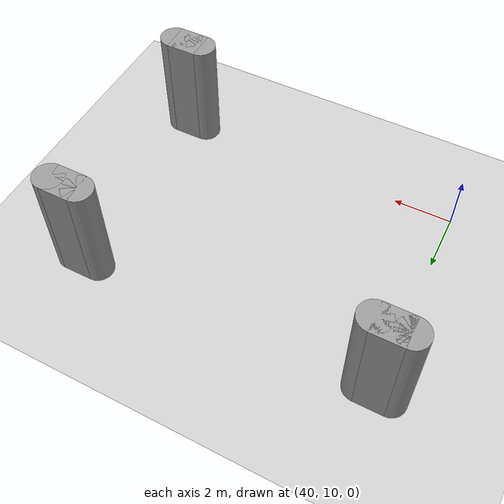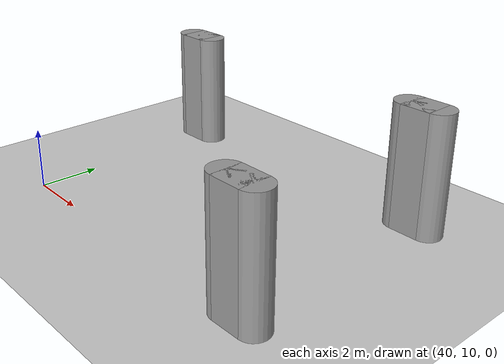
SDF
<sdf version="1.6">
 <world name="default">
  <model name="ground_plane">
   <static>1</static>
   <link name="link">
    <collision name="collision">
     <geometry><plane><normal>0 0 1</normal><size>100 100</size></plane></geometry>
     <surface><friction><ode><mu>100</mu><mu2>50</mu2></ode></friction></surface>
    </collision>
    <visual name="visual">
     <cast_shadows>0</cast_shadows>
     <geometry><plane><normal>0 0 1</normal><size>100 100</size></plane></geometry>
     <material>
      <script><uri>file://media/materials/scripts/gazebo.material</uri><name>Gazebo/Grey</name></script>
     </material>
    </visual>
   </link>
  </model>
  <model name="pillar_clone_6_clone_21">
   <link name="link_0">
    <inertial>
     <mass>1</mass>
     <inertia>
      <ixx>0.166667</ixx>
      <ixy>0</ixy>
      <ixz>0</ixz>
      <iyy>0.166667</iyy>
      <iyz>0</iyz>
      <izz>0.166667</izz>
     </inertia>
    </inertial>
    <kinematic>1</kinematic>
    <visual name="visual">
     <geometry><box><size>1 1 4</size></box></geometry>
     <material>
      <lighting>1</lighting>
      <script><uri>file://media/materials/scripts/gazebo.material</uri><name>Gazebo/Grey</name></script>
      <shader type="pixel"><normal_map>__default__</normal_map></shader>
      <ambient>0.3 0.3 0.3 1</ambient>
      <diffuse>0.7 0.7 0.7 1</diffuse>
      <specular>0.01 0.01 0.01 1</specular>
      <emissive>0 0 0 1</emissive>
     </material>
    </visual>
    <collision name="collision">
     <geometry><box><size>1 1 4</size></box></geometry>
     <surface>
      <friction>
       <ode><mu>1</mu><mu2>1</mu2><fdir1>0 0 0</fdir1><slip1>0</slip1><slip2>0</slip2></ode>
       <torsional>
        <coefficient>1</coefficient>
        <patch_radius>0</patch_radius>
        <surface_radius>0</surface_radius>
        <use_patch_radius>1</use_patch_radius>
        <ode><slip>0</slip></ode>
       </torsional>
      </friction>
      <bounce><restitution_coefficient>0</restitution_coefficient><threshold>1e+06</threshold></bounce>
      <contact>
       <collide_without_contact>0</collide_without_contact>
       <collide_without_contact_bitmask>1</collide_without_contact_bitmask>
       <collide_bitmask>1</collide_bitmask>
       <ode>
        <soft_cfm>0</soft_cfm>
        <soft_erp>0.2</soft_erp>
        <kp>1e+13</kp>
        <kd>1</kd>
        <max_vel>0.01</max_vel>
        <min_depth>0</min_depth>
       </ode>
       <bullet>
        <split_impulse>1</split_impulse>
        <split_impulse_penetration_threshold>-0.01</split_impulse_penetration_threshold>
        <soft_cfm>0</soft_cfm>
        <soft_erp>0.2</soft_erp>
        <kp>1e+13</kp>
        <kd>1</kd>
       </bullet>
      </contact>
     </surface>
    </collision>
   </link>
   <link name="link_1">
    <inertial>
     <mass>1</mass>
     <inertia><ixx>0.145833</ixx><ixy>0</ixy><ixz>0</ixz><iyy>0.145833</iyy><iyz>0</iyz><izz>0.125</izz></inertia>
    </inertial>
    <pose>-0.5 0 0 0 -0 0</pose>
    <kinematic>1</kinematic>
    <visual name="visual">
     <geometry><cylinder><radius>0.5</radius><length>4</length></cylinder></geometry>
     <material>
      <lighting>1</lighting>
      <script><uri>file://media/materials/scripts/gazebo.material</uri><name>Gazebo/Grey</name></script>
      <shader type="pixel"><normal_map>__default__</normal_map></shader>
      <ambient>0.3 0.3 0.3 1</ambient>
      <diffuse>0.7 0.7 0.7 1</diffuse>
      <specular>0.01 0.01 0.01 1</specular>
      <emissive>0 0 0 1</emissive>
     </material>
    </visual>
    <collision name="collision">
     <geometry><cylinder><radius>0.5</radius><length>4</length></cylinder></geometry>
     <surface>
      <friction>
       <ode><mu>1</mu><mu2>1</mu2><fdir1>0 0 0</fdir1><slip1>0</slip1><slip2>0</slip2></ode>
       <torsional>
        <coefficient>1</coefficient>
        <patch_radius>0</patch_radius>
        <surface_radius>0</surface_radius>
        <use_patch_radius>1</use_patch_radius>
        <ode><slip>0</slip></ode>
       </torsional>
      </friction>
      <bounce><restitution_coefficient>0</restitution_coefficient><threshold>1e+06</threshold></bounce>
      <contact>
       <collide_without_contact>0</collide_without_contact>
       <collide_without_contact_bitmask>1</collide_without_contact_bitmask>
       <collide_bitmask>1</collide_bitmask>
       <ode>
        <soft_cfm>0</soft_cfm>
        <soft_erp>0.2</soft_erp>
        <kp>1e+13</kp>
        <kd>1</kd>
        <max_vel>0.01</max_vel>
        <min_depth>0</min_depth>
       </ode>
       <bullet>
        <split_impulse>1</split_impulse>
        <split_impulse_penetration_threshold>-0.01</split_impulse_penetration_threshold>
        <soft_cfm>0</soft_cfm>
        <soft_erp>0.2</soft_erp>
        <kp>1e+13</kp>
        <kd>1</kd>
       </bullet>
      </contact>
     </surface>
    </collision>
   </link>
   <link name="link_2">
    <inertial>
     <mass>1</mass>
     <inertia><ixx>0.145833</ixx><ixy>0</ixy><ixz>0</ixz><iyy>0.145833</iyy><iyz>0</iyz><izz>0.125</izz></inertia>
    </inertial>
    <pose>0.5 0 0 0 -0 0</pose>
    <kinematic>1</kinematic>
    <visual name="visual">
     <geometry><cylinder><radius>0.5</radius><length>4</length></cylinder></geometry>
     <material>
      <lighting>1</lighting>
      <script><uri>file://media/materials/scripts/gazebo.material</uri><name>Gazebo/Grey</name></script>
      <shader type="pixel"><normal_map>__default__</normal_map></shader>
      <ambient>0.3 0.3 0.3 1</ambient>
      <diffuse>0.7 0.7 0.7 1</diffuse>
      <specular>0.01 0.01 0.01 1</specular>
      <emissive>0 0 0 1</emissive>
     </material>
    </visual>
    <collision name="collision">
     <geometry><cylinder><radius>0.5</radius><length>4</length></cylinder></geometry>
     <surface>
      <friction>
       <ode><mu>1</mu><mu2>1</mu2><fdir1>0 0 0</fdir1><slip1>0</slip1><slip2>0</slip2></ode>
       <torsional>
        <coefficient>1</coefficient>
        <patch_radius>0</patch_radius>
        <surface_radius>0</surface_radius>
        <use_patch_radius>1</use_patch_radius>
        <ode><slip>0</slip></ode>
       </torsional>
      </friction>
      <bounce><restitution_coefficient>0</restitution_coefficient><threshold>1e+06</threshold></bounce>
      <contact>
       <collide_without_contact>0</collide_without_contact>
       <collide_without_contact_bitmask>1</collide_without_contact_bitmask>
       <collide_bitmask>1</collide_bitmask>
       <ode>
        <soft_cfm>0</soft_cfm>
        <soft_erp>0.2</soft_erp>
        <kp>1e+13</kp>
        <kd>1</kd>
        <max_vel>0.01</max_vel>
        <min_depth>0</min_depth>
       </ode>
       <bullet>
        <split_impulse>1</split_impulse>
        <split_impulse_penetration_threshold>-0.01</split_impulse_penetration_threshold>
        <soft_cfm>0</soft_cfm>
        <soft_erp>0.2</soft_erp>
        <kp>1e+13</kp>
        <kd>1</kd>
       </bullet>
      </contact>
     </surface>
    </collision>
   </link>
   <static>1</static>
   <pose>50 10 2 0 -0 0</pose>
  </model>
  <model name="pillar_clone_6_clone_26">
   <link name="link_0">
    <inertial>
     <mass>1</mass>
     <inertia>
      <ixx>0.166667</ixx>
      <ixy>0</ixy>
      <ixz>0</ixz>
      <iyy>0.166667</iyy>
      <iyz>0</iyz>
      <izz>0.166667</izz>
     </inertia>
    </inertial>
    <kinematic>1</kinematic>
    <visual name="visual">
     <geometry><box><size>1 1 4</size></box></geometry>
     <material>
      <lighting>1</lighting>
      <script><uri>file://media/materials/scripts/gazebo.material</uri><name>Gazebo/Grey</name></script>
      <shader type="pixel"><normal_map>__default__</normal_map></shader>
      <ambient>0.3 0.3 0.3 1</ambient>
      <diffuse>0.7 0.7 0.7 1</diffuse>
      <specular>0.01 0.01 0.01 1</specular>
      <emissive>0 0 0 1</emissive>
     </material>
    </visual>
    <collision name="collision">
     <geometry><box><size>1 1 4</size></box></geometry>
     <surface>
      <friction>
       <ode><mu>1</mu><mu2>1</mu2><fdir1>0 0 0</fdir1><slip1>0</slip1><slip2>0</slip2></ode>
       <torsional>
        <coefficient>1</coefficient>
        <patch_radius>0</patch_radius>
        <surface_radius>0</surface_radius>
        <use_patch_radius>1</use_patch_radius>
        <ode><slip>0</slip></ode>
       </torsional>
      </friction>
      <bounce><restitution_coefficient>0</restitution_coefficient><threshold>1e+06</threshold></bounce>
      <contact>
       <collide_without_contact>0</collide_without_contact>
       <collide_without_contact_bitmask>1</collide_without_contact_bitmask>
       <collide_bitmask>1</collide_bitmask>
       <ode>
        <soft_cfm>0</soft_cfm>
        <soft_erp>0.2</soft_erp>
        <kp>1e+13</kp>
        <kd>1</kd>
        <max_vel>0.01</max_vel>
        <min_depth>0</min_depth>
       </ode>
       <bullet>
        <split_impulse>1</split_impulse>
        <split_impulse_penetration_threshold>-0.01</split_impulse_penetration_threshold>
        <soft_cfm>0</soft_cfm>
        <soft_erp>0.2</soft_erp>
        <kp>1e+13</kp>
        <kd>1</kd>
       </bullet>
      </contact>
     </surface>
    </collision>
   </link>
   <link name="link_1">
    <inertial>
     <mass>1</mass>
     <inertia><ixx>0.145833</ixx><ixy>0</ixy><ixz>0</ixz><iyy>0.145833</iyy><iyz>0</iyz><izz>0.125</izz></inertia>
    </inertial>
    <pose>-0.5 0 0 0 -0 0</pose>
    <kinematic>1</kinematic>
    <visual name="visual">
     <geometry><cylinder><radius>0.5</radius><length>4</length></cylinder></geometry>
     <material>
      <lighting>1</lighting>
      <script><uri>file://media/materials/scripts/gazebo.material</uri><name>Gazebo/Grey</name></script>
      <shader type="pixel"><normal_map>__default__</normal_map></shader>
      <ambient>0.3 0.3 0.3 1</ambient>
      <diffuse>0.7 0.7 0.7 1</diffuse>
      <specular>0.01 0.01 0.01 1</specular>
      <emissive>0 0 0 1</emissive>
     </material>
    </visual>
    <collision name="collision">
     <geometry><cylinder><radius>0.5</radius><length>4</length></cylinder></geometry>
     <surface>
      <friction>
       <ode><mu>1</mu><mu2>1</mu2><fdir1>0 0 0</fdir1><slip1>0</slip1><slip2>0</slip2></ode>
       <torsional>
        <coefficient>1</coefficient>
        <patch_radius>0</patch_radius>
        <surface_radius>0</surface_radius>
        <use_patch_radius>1</use_patch_radius>
        <ode><slip>0</slip></ode>
       </torsional>
      </friction>
      <bounce><restitution_coefficient>0</restitution_coefficient><threshold>1e+06</threshold></bounce>
      <contact>
       <collide_without_contact>0</collide_without_contact>
       <collide_without_contact_bitmask>1</collide_without_contact_bitmask>
       <collide_bitmask>1</collide_bitmask>
       <ode>
        <soft_cfm>0</soft_cfm>
        <soft_erp>0.2</soft_erp>
        <kp>1e+13</kp>
        <kd>1</kd>
        <max_vel>0.01</max_vel>
        <min_depth>0</min_depth>
       </ode>
       <bullet>
        <split_impulse>1</split_impulse>
        <split_impulse_penetration_threshold>-0.01</split_impulse_penetration_threshold>
        <soft_cfm>0</soft_cfm>
        <soft_erp>0.2</soft_erp>
        <kp>1e+13</kp>
        <kd>1</kd>
       </bullet>
      </contact>
     </surface>
    </collision>
   </link>
   <link name="link_2">
    <inertial>
     <mass>1</mass>
     <inertia><ixx>0.145833</ixx><ixy>0</ixy><ixz>0</ixz><iyy>0.145833</iyy><iyz>0</iyz><izz>0.125</izz></inertia>
    </inertial>
    <pose>0.5 0 0 0 -0 0</pose>
    <kinematic>1</kinematic>
    <visual name="visual">
     <geometry><cylinder><radius>0.5</radius><length>4</length></cylinder></geometry>
     <material>
      <lighting>1</lighting>
      <script><uri>file://media/materials/scripts/gazebo.material</uri><name>Gazebo/Grey</name></script>
      <shader type="pixel"><normal_map>__default__</normal_map></shader>
      <ambient>0.3 0.3 0.3 1</ambient>
      <diffuse>0.7 0.7 0.7 1</diffuse>
      <specular>0.01 0.01 0.01 1</specular>
      <emissive>0 0 0 1</emissive>
     </material>
    </visual>
    <collision name="collision">
     <geometry><cylinder><radius>0.5</radius><length>4</length></cylinder></geometry>
     <surface>
      <friction>
       <ode><mu>1</mu><mu2>1</mu2><fdir1>0 0 0</fdir1><slip1>0</slip1><slip2>0</slip2></ode>
       <torsional>
        <coefficient>1</coefficient>
        <patch_radius>0</patch_radius>
        <surface_radius>0</surface_radius>
        <use_patch_radius>1</use_patch_radius>
        <ode><slip>0</slip></ode>
       </torsional>
      </friction>
      <bounce><restitution_coefficient>0</restitution_coefficient><threshold>1e+06</threshold></bounce>
      <contact>
       <collide_without_contact>0</collide_without_contact>
       <collide_without_contact_bitmask>1</collide_without_contact_bitmask>
       <collide_bitmask>1</collide_bitmask>
       <ode>
        <soft_cfm>0</soft_cfm>
        <soft_erp>0.2</soft_erp>
        <kp>1e+13</kp>
        <kd>1</kd>
        <max_vel>0.01</max_vel>
        <min_depth>0</min_depth>
       </ode>
       <bullet>
        <split_impulse>1</split_impulse>
        <split_impulse_penetration_threshold>-0.01</split_impulse_penetration_threshold>
        <soft_cfm>0</soft_cfm>
        <soft_erp>0.2</soft_erp>
        <kp>1e+13</kp>
        <kd>1</kd>
       </bullet>
      </contact>
     </surface>
    </collision>
   </link>
   <static>1</static>
   <pose>40 17 2 0 -0 0</pose>
  </model>
  <model name="pillar_clone_6_clone_27">
   <link name="link_0">
    <inertial>
     <mass>1</mass>
     <inertia>
      <ixx>0.166667</ixx>
      <ixy>0</ixy>
      <ixz>0</ixz>
      <iyy>0.166667</iyy>
      <iyz>0</iyz>
      <izz>0.166667</izz>
     </inertia>
    </inertial>
    <kinematic>1</kinematic>
    <visual name="visual">
     <geometry><box><size>1 1 4</size></box></geometry>
     <material>
      <lighting>1</lighting>
      <script><uri>file://media/materials/scripts/gazebo.material</uri><name>Gazebo/Grey</name></script>
      <shader type="pixel"><normal_map>__default__</normal_map></shader>
      <ambient>0.3 0.3 0.3 1</ambient>
      <diffuse>0.7 0.7 0.7 1</diffuse>
      <specular>0.01 0.01 0.01 1</specular>
      <emissive>0 0 0 1</emissive>
     </material>
    </visual>
    <collision name="collision">
     <geometry><box><size>1 1 4</size></box></geometry>
     <surface>
      <friction>
       <ode><mu>1</mu><mu2>1</mu2><fdir1>0 0 0</fdir1><slip1>0</slip1><slip2>0</slip2></ode>
       <torsional>
        <coefficient>1</coefficient>
        <patch_radius>0</patch_radius>
        <surface_radius>0</surface_radius>
        <use_patch_radius>1</use_patch_radius>
        <ode><slip>0</slip></ode>
       </torsional>
      </friction>
      <bounce><restitution_coefficient>0</restitution_coefficient><threshold>1e+06</threshold></bounce>
      <contact>
       <collide_without_contact>0</collide_without_contact>
       <collide_without_contact_bitmask>1</collide_without_contact_bitmask>
       <collide_bitmask>1</collide_bitmask>
       <ode>
        <soft_cfm>0</soft_cfm>
        <soft_erp>0.2</soft_erp>
        <kp>1e+13</kp>
        <kd>1</kd>
        <max_vel>0.01</max_vel>
        <min_depth>0</min_depth>
       </ode>
       <bullet>
        <split_impulse>1</split_impulse>
        <split_impulse_penetration_threshold>-0.01</split_impulse_penetration_threshold>
        <soft_cfm>0</soft_cfm>
        <soft_erp>0.2</soft_erp>
        <kp>1e+13</kp>
        <kd>1</kd>
       </bullet>
      </contact>
     </surface>
    </collision>
   </link>
   <link name="link_1">
    <inertial>
     <mass>1</mass>
     <inertia><ixx>0.145833</ixx><ixy>0</ixy><ixz>0</ixz><iyy>0.145833</iyy><iyz>0</iyz><izz>0.125</izz></inertia>
    </inertial>
    <pose>-0.5 0 0 0 -0 0</pose>
    <kinematic>1</kinematic>
    <visual name="visual">
     <geometry><cylinder><radius>0.5</radius><length>4</length></cylinder></geometry>
     <material>
      <lighting>1</lighting>
      <script><uri>file://media/materials/scripts/gazebo.material</uri><name>Gazebo/Grey</name></script>
      <shader type="pixel"><normal_map>__default__</normal_map></shader>
      <ambient>0.3 0.3 0.3 1</ambient>
      <diffuse>0.7 0.7 0.7 1</diffuse>
      <specular>0.01 0.01 0.01 1</specular>
      <emissive>0 0 0 1</emissive>
     </material>
    </visual>
    <collision name="collision">
     <geometry><cylinder><radius>0.5</radius><length>4</length></cylinder></geometry>
     <surface>
      <friction>
       <ode><mu>1</mu><mu2>1</mu2><fdir1>0 0 0</fdir1><slip1>0</slip1><slip2>0</slip2></ode>
       <torsional>
        <coefficient>1</coefficient>
        <patch_radius>0</patch_radius>
        <surface_radius>0</surface_radius>
        <use_patch_radius>1</use_patch_radius>
        <ode><slip>0</slip></ode>
       </torsional>
      </friction>
      <bounce><restitution_coefficient>0</restitution_coefficient><threshold>1e+06</threshold></bounce>
      <contact>
       <collide_without_contact>0</collide_without_contact>
       <collide_without_contact_bitmask>1</collide_without_contact_bitmask>
       <collide_bitmask>1</collide_bitmask>
       <ode>
        <soft_cfm>0</soft_cfm>
        <soft_erp>0.2</soft_erp>
        <kp>1e+13</kp>
        <kd>1</kd>
        <max_vel>0.01</max_vel>
        <min_depth>0</min_depth>
       </ode>
       <bullet>
        <split_impulse>1</split_impulse>
        <split_impulse_penetration_threshold>-0.01</split_impulse_penetration_threshold>
        <soft_cfm>0</soft_cfm>
        <soft_erp>0.2</soft_erp>
        <kp>1e+13</kp>
        <kd>1</kd>
       </bullet>
      </contact>
     </surface>
    </collision>
   </link>
   <link name="link_2">
    <inertial>
     <mass>1</mass>
     <inertia><ixx>0.145833</ixx><ixy>0</ixy><ixz>0</ixz><iyy>0.145833</iyy><iyz>0</iyz><izz>0.125</izz></inertia>
    </inertial>
    <pose>0.5 0 0 0 -0 0</pose>
    <kinematic>1</kinematic>
    <visual name="visual">
     <geometry><cylinder><radius>0.5</radius><length>4</length></cylinder></geometry>
     <material>
      <lighting>1</lighting>
      <script><uri>file://media/materials/scripts/gazebo.material</uri><name>Gazebo/Grey</name></script>
      <shader type="pixel"><normal_map>__default__</normal_map></shader>
      <ambient>0.3 0.3 0.3 1</ambient>
      <diffuse>0.7 0.7 0.7 1</diffuse>
      <specular>0.01 0.01 0.01 1</specular>
      <emissive>0 0 0 1</emissive>
     </material>
    </visual>
    <collision name="collision">
     <geometry><cylinder><radius>0.5</radius><length>4</length></cylinder></geometry>
     <surface>
      <friction>
       <ode><mu>1</mu><mu2>1</mu2><fdir1>0 0 0</fdir1><slip1>0</slip1><slip2>0</slip2></ode>
       <torsional>
        <coefficient>1</coefficient>
        <patch_radius>0</patch_radius>
        <surface_radius>0</surface_radius>
        <use_patch_radius>1</use_patch_radius>
        <ode><slip>0</slip></ode>
       </torsional>
      </friction>
      <bounce><restitution_coefficient>0</restitution_coefficient><threshold>1e+06</threshold></bounce>
      <contact>
       <collide_without_contact>0</collide_without_contact>
       <collide_without_contact_bitmask>1</collide_without_contact_bitmask>
       <collide_bitmask>1</collide_bitmask>
       <ode>
        <soft_cfm>0</soft_cfm>
        <soft_erp>0.2</soft_erp>
        <kp>1e+13</kp>
        <kd>1</kd>
        <max_vel>0.01</max_vel>
        <min_depth>0</min_depth>
       </ode>
       <bullet>
        <split_impulse>1</split_impulse>
        <split_impulse_penetration_threshold>-0.01</split_impulse_penetration_threshold>
        <soft_cfm>0</soft_cfm>
        <soft_erp>0.2</soft_erp>
        <kp>1e+13</kp>
        <kd>1</kd>
       </bullet>
      </contact>
     </surface>
    </collision>
   </link>
   <static>1</static>
   <pose>50 17 2 0 -0 0</pose>
  </model>
 </world>
</sdf>
